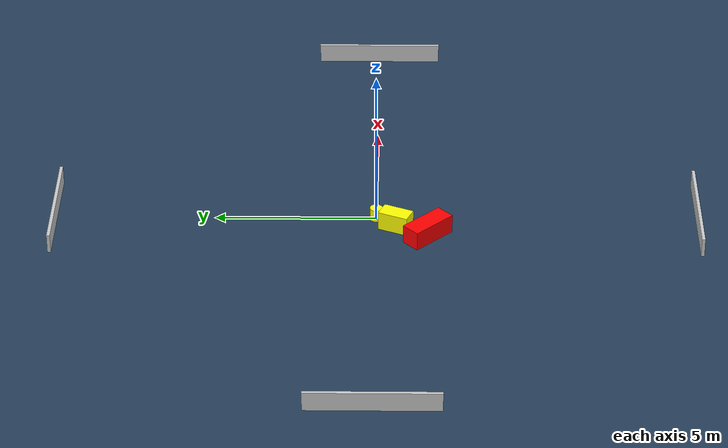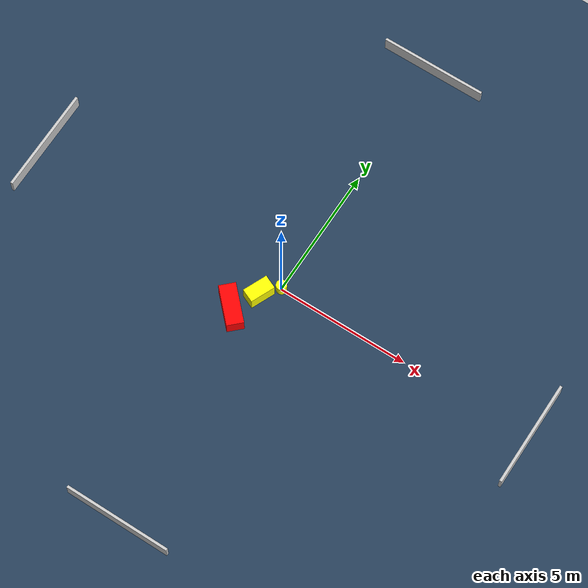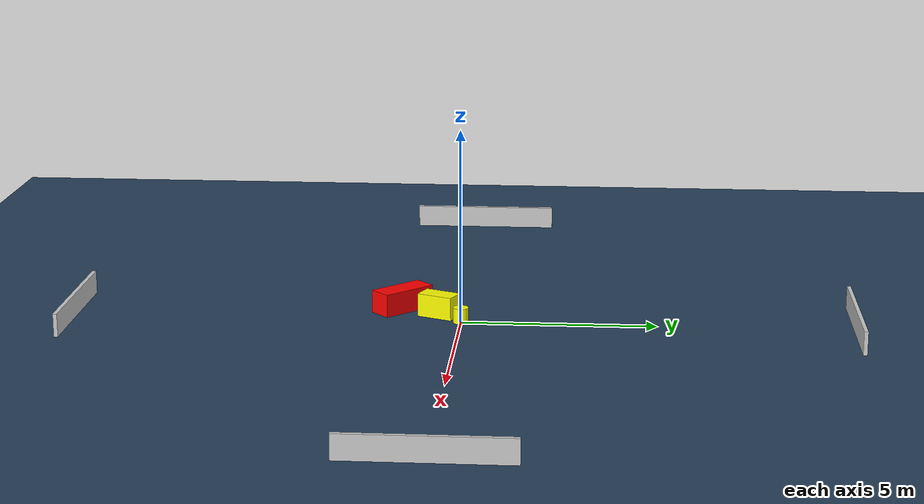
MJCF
<?xml version="1.0" ?>
<mujoco model="generated_environment">
  <option timestep="0.01" integrator="RK4" cone="elliptic"/>
  <default>
    <geom density="1"/>
  </default>
  <asset>
    <texture builtin="gradient" height="3072" name="skybox" rgb1="0.3 0.5 0.7" rgb2="0 0 0" type="skybox" width="512"/>
    <texture builtin="checker" height="300" name="groundplane" rgb1="0.2 0.3 0.4" rgb2="0.1 0.2 0.3" type="2d" width="300"/>
    <material name="groundplane" reflectance="0.2" texrepeat="5 5" texture="groundplane"/>
  </asset>
  <worldbody>
    <light dir="0 0 -1" directional="true" pos="0 0 1.5"/>
    <geom condim="3" friction="0.5 0.005 0.001" material="groundplane" name="floor" pos="0 0 0" size="0 0 0.05" type="plane"/>
    <body name="walls">
      <geom name="wall_1" condim="4" pos="-10.0 0.0 0.3" rgba="0.800000011920929 0.800000011920929 0.800000011920929 1.0" size="0.05 2.0 0.3" type="box"/>
      <geom name="wall_2" condim="4" pos="10.0 0.0 0.3" rgba="0.800000011920929 0.800000011920929 0.800000011920929 1.0" size="0.05 2.0 0.3" type="box"/>
      <geom name="wall_3" condim="4" pos="0.0 -10.0 0.3" rgba="0.800000011920929 0.800000011920929 0.800000011920929 1.0" size="2.0 0.05 0.3" type="box"/>
      <geom name="wall_4" condim="4" pos="0.0 10.0 0.3" rgba="0.800000011920929 0.800000011920929 0.800000011920929 1.0" size="2.0 0.05 0.3" type="box"/>
    </body>
    <body name="robot">
      <joint name="joint_x" type="slide" pos="0 0 0" axis="1 0 0"/>
      <joint name="joint_y" type="slide" pos="0 0 0" axis="0 1 0"/>
      <geom name="robot" type="cylinder" pos="0.0 0.0 0.2" size="0.2 0.2 0.0" mass="5.0" friction="1.0 0.005 0.0001" condim="4" rgba="1.0 1.0 0.0 1.0"/>
    </body>
    <body name="obstacle_1_movable">
      <geom name="obstacle_1_movable" condim="4" pos="-0.5351043831266364 -0.6074960284166682 0.3" euler="0 0 336.37180787975245" friction="0.0 0.005 0.001" rgba="1.0 1.0 0.0 1.0" size="0.2647212363544199 0.4798871007298418 0.3" type="box" mass="0.1"/>
      <joint type="free"/>
    </body>
    <body name="obstacle_2_static">
      <geom name="obstacle_2_static" condim="4" pos="-1.024907789093901 -1.597077361503396 0.3" euler="0 0 44.143466677164696" friction="0.0 0.005 0.001" rgba="1.0 0.0 0.0 1.0" size="0.3120657952550542 0.7581356580846144 0.3" type="box"/>
    </body>
  </worldbody>
  <actuator>
    <motor name="actuator_x" joint="joint_x" gear="1" ctrlrange="-1 1"/>
    <motor name="actuator_y" joint="joint_y" gear="1" ctrlrange="-1 1"/>
  </actuator>
</mujoco>
